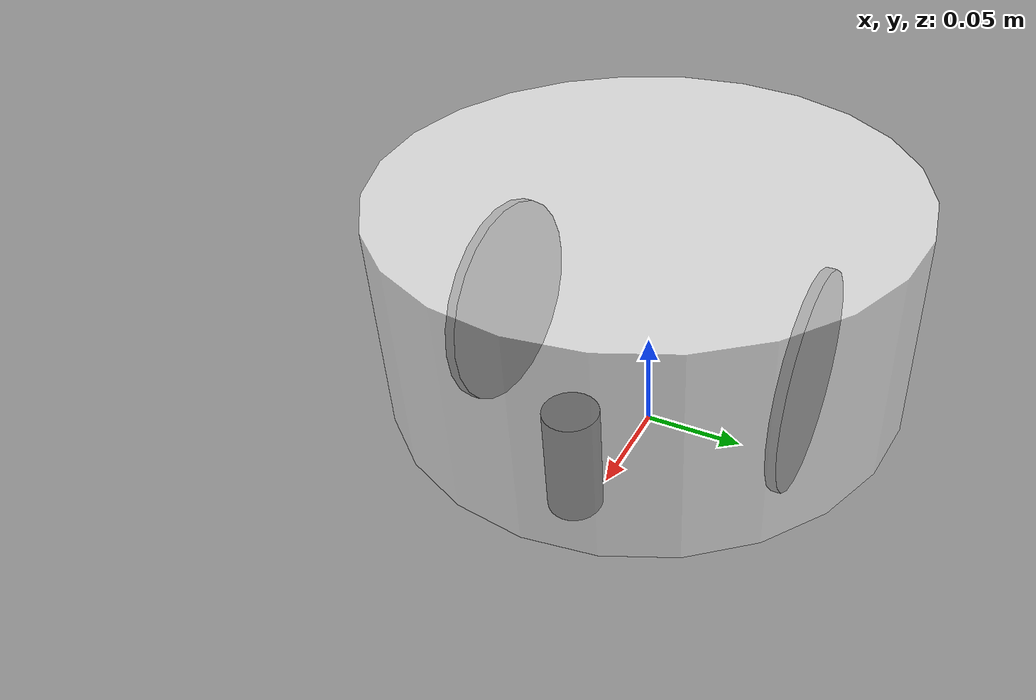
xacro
<?xml version="1.0"?>
<robot xmlns:xacro="http://www.ros.org/wiki/xacro">

    <xacro:include filename="inertial_macros.xacro"/>

    <material name="white">
        <color rgba="1.0 1.0 1.0 0.7"/>
    </material>

    <material name="black">
        <color rgba="0.0 0.0 0.0 1.0"/>
    </material>

    <!-- BASE FOOTPRINT LINK-->

    <link name="base_footprint">

    </link>

    <!-- BASE LINK -->

    <joint name="base_link_joint" type="fixed">
        <parent link="base_footprint"/>
        <child link="base_link"/>
        <origin xyz="0.0 0.0 0.052"/>
    </joint>

    <link name="base_link">
        <visual>
            <origin xyz="0.0 0.0 0.036"/>
            <geometry>
                <cylinder radius="0.125" length="0.1"/>
            </geometry>
            <material name="white"/>
        </visual>
        <collision>
            <origin xyz="0.0 0.0 0.036"/>
            <geometry>
                <cylinder radius="0.125" length="0.1"/>
            </geometry>
        </collision>
        <xacro:inertial_cylinder mass = "3.0" length = "0.1" radius = "0.125">
            <origin xyz="0.0 0.0 0.036" rpy="0.0 0.0 0.0"/>
        </xacro:inertial_cylinder>
    </link>

    <gazebo reference="base_link">
        <material>Gazebo/White</material>
    </gazebo>

    <!-- LEFT WHEEL LINK -->

    <joint name="left_wheel_joint" type="continuous">
        <parent link="base_link"/>
        <child link="left_wheel_link"/>
        <origin xyz="0.0 0.08 0.0" rpy="0.0 0.0 0.0"/>
        <axis xyz="0.0 1.0 0.0"/>

    </joint>

    <link name="left_wheel_link">
        <visual>
            <origin rpy= "1.5707 0.0 0.0"/>
            <geometry>
                <cylinder radius="0.053" length="0.005"/>
            </geometry>
            <material name="black"/>
        </visual>
        <collision>
            <origin rpy= "1.5707 0.0 0.0"/>
            <geometry>
                <cylinder radius="0.053" length="0.005"/>
            </geometry>
        </collision>

        <xacro:inertial_cylinder mass = "0.01" length = "0.005" radius = "0.053">
            <origin xyz="0.0 0.0 0.0" rpy="0.0 0.0 0.0"/>
        </xacro:inertial_cylinder>
    </link>

    <gazebo reference="left_wheel_link">
        <material>Gazebo/Black</material>
        <mu1 value="1.0"/>
        <mu2 value="1.0"/>
    </gazebo>

    <!-- RIGHT WHEEL LINK -->

    <joint name="right_wheel_joint" type="continuous">
        <parent link="base_link"/>
        <child link="right_wheel_link"/>
        <origin xyz="0.0 -0.08 0.0" rpy="0.0 0.0 0.0"/>
        <axis xyz="0.0 1.0 0.0"/>

    </joint>

    <link name="right_wheel_link">
        <visual>
            <origin rpy= "1.5707 0.0 0.0"/>
            <geometry>
                <cylinder radius="0.053" length="0.005"/>
            </geometry>
            <material name="black"/>
        </visual>
        <collision>
            <origin rpy= "1.5707 0.0 0.0"/>
            <geometry>
                <cylinder radius="0.053" length="0.005"/>
            </geometry>
        </collision>
        <xacro:inertial_cylinder mass = "0.01" length = "0.005" radius = "0.053">
            <origin xyz="0.0 0.0 0.0" rpy="0.0 0.0 0.0"/>
        </xacro:inertial_cylinder>
    </link>

    <gazebo reference="right_wheel_link">
        <material>Gazebo/Black</material>
        <mu1 value="1.0"/>
        <mu2 value="1.0"/>
    </gazebo>

    <!-- FRONT CASTER LINK -->

    <joint name="front_caster_joint" type="fixed">
        <parent link="base_link"/>
        <child link="front_caster_link"/>
        <origin xyz= "0.08 0.0 0.0"/>
    </joint>

    <link name="front_caster_link">
        <visual>
            <origin xyz="0.0 0.0 -0.01"/>
            <geometry>
                <cylinder radius="0.0125" length="0.052"/>
            </geometry>
            <material name="black"/>
        </visual>
        <collision>
            <origin xyz="0.0 0.0 -0.026"/>
            <geometry>
                <cylinder radius="0.0125" length="0.052"/>
            </geometry>
        </collision>
        <xacro:inertial_cylinder mass = "0.01" length = "0.052" radius = "0.0125">
            <origin xyz="0.0 0.0 -0.026" rpy="0.0 0.0 0.0"/>
        </xacro:inertial_cylinder>
    </link>

    <gazebo reference="front_caster_link">
        <material>Gazebo/Black</material>
        <mu1 value="0.001"/>
        <mu2 value="0.001"/>
    </gazebo>

    <!-- BACK CASTER LINK -->

    <joint name="back_caster_joint" type="fixed">
        <parent link="base_link"/>
        <child link="back_caster_link"/>
        <origin xyz= "-0.08 0.0 0.0"/>
    </joint>

    <link name="back_caster_link">
        <visual>
            <origin xyz="0.0 0.0 -0.01"/>
            <geometry>
                <cylinder radius="0.025" length="0.052"/>
            </geometry>
            <material name="white"/>
        </visual>
        <collision>
            <origin xyz="0.0 0.0 -0.026"/>
            <geometry>
                <cylinder radius="0.025" length="0.052"/>
            </geometry>
        </collision>
        <xacro:inertial_cylinder mass = "0.01" length = "0.052" radius = "0.025">
            <origin xyz="0.0 0.0 -0.026" rpy="0.0 0.0 0.0"/>
        </xacro:inertial_cylinder>
    </link>

    <gazebo reference="back_caster_link">
        <material>Gazebo/White</material>
        <mu1 value="0.001"/>
        <mu2 value="0.001"/>
    </gazebo>

</robot>
